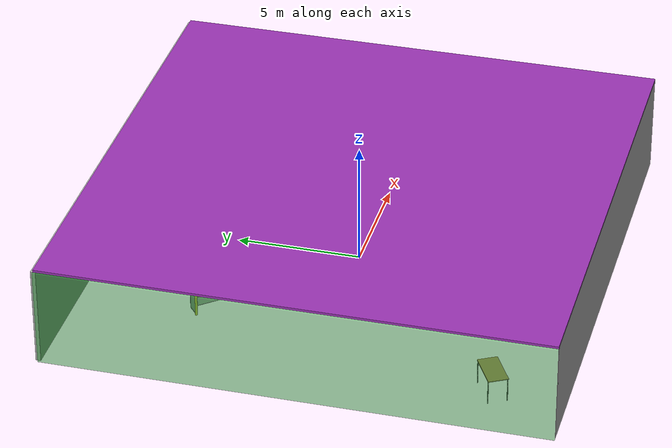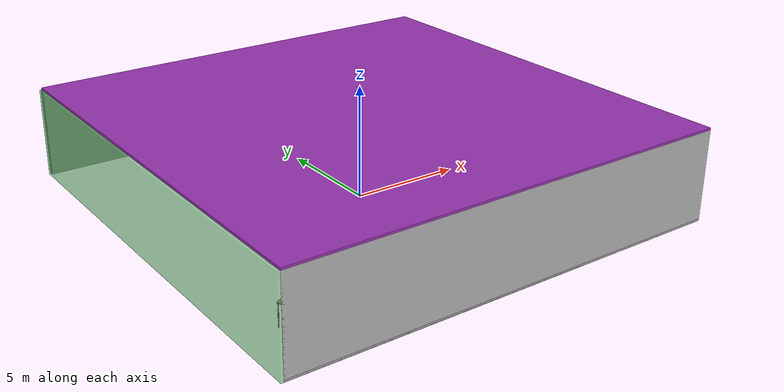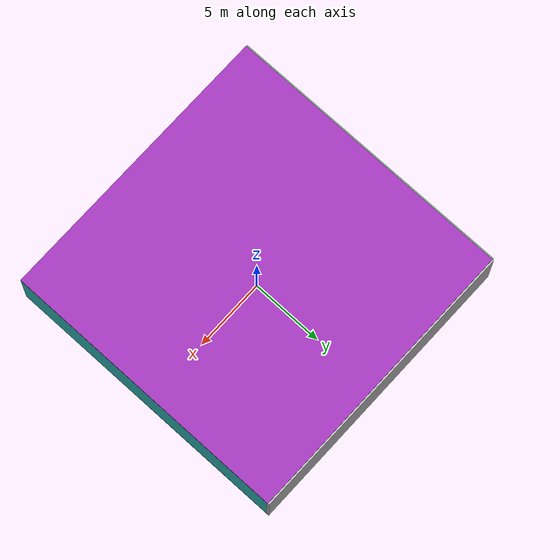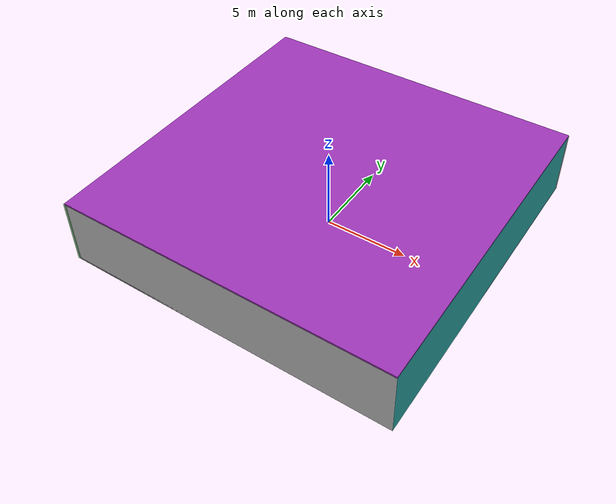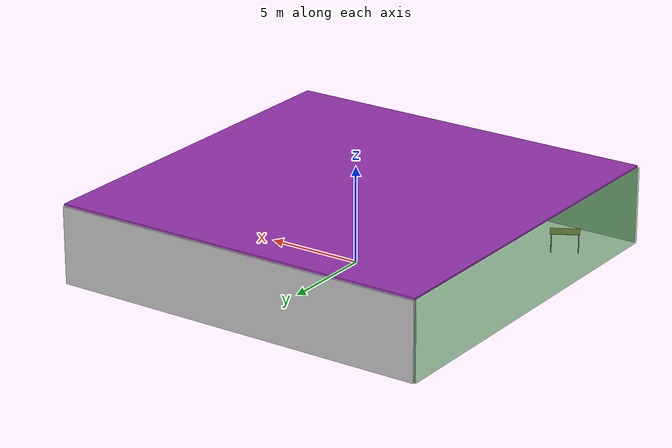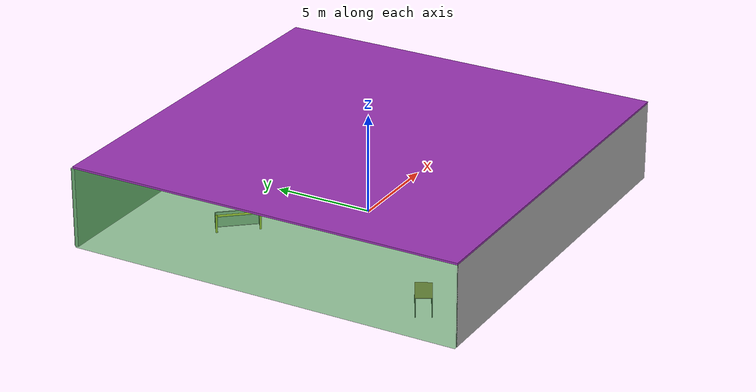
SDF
<sdf version="1.4">
 <world name="default">
  <physics type="ode">
   <max_step_size>0.001</max_step_size>
   <real_time_factor>1</real_time_factor>
   <real_time_update_rate>1000</real_time_update_rate>
   <gravity>0 0 -9.8</gravity>
  </physics>
  <scene><ambient>0.4 0.4 0.4 1</ambient><background>0.7 0.7 0.7 1</background><shadows>1</shadows></scene>
  <model name="Surrounding">
   <static>1</static>
   <link name="Ceiling">
    <collision name="Ceiling_Collision"><geometry><box><size>20 20 0.1</size></box></geometry></collision>
    <visual name="Ceiling_Visual">
     <geometry><box><size>20 20 0.1</size></box></geometry>
     <material>
      <script><uri>file://media/materials/scripts/gazebo.material</uri><name>Gazebo/PurpleGlow</name></script>
     </material>
    </visual>
    <pose>0 0 4.05 0 0 0</pose>
   </link>
   <link name="Wall_South">
    <collision name="Wall_South_Collision">
     <geometry><box><size>20 0 4</size></box></geometry>
     <pose>0 0 2 0 -0 0</pose>
    </collision>
    <visual name="Wall_South_Visual">
     <pose>0 0 2 0 -0 0</pose>
     <geometry><box><size>20 0 4</size></box></geometry>
     <material>
      <script><uri>file://media/materials/scripts/gazebo.material</uri><name>Gazebo/CloudySky</name></script>
     </material>
    </visual>
    <velocity_decay><linear>0</linear><angular>0</angular></velocity_decay>
    <pose>0 -10 0 0 -0 0</pose>
   </link>
   <link name="Wall_East">
    <collision name="Wall_21_Collision">
     <geometry><box><size>20 0 4</size></box></geometry>
     <pose>0 0 2 0 -0 0</pose>
    </collision>
    <visual name="Wall_21_Visual">
     <pose>0 0 2 0 -0 0</pose>
     <geometry><box><size>20 0 4</size></box></geometry>
     <material>
      <script><uri>file://media/materials/scripts/gazebo.material</uri><name>Gazebo/TurquoiseGlow</name></script>
     </material>
    </visual>
    <velocity_decay><linear>0</linear><angular>0</angular></velocity_decay>
    <pose>10 0 0 0 -0 1.5708</pose>
   </link>
   <link name="Wall_North">
    <collision name="Wall_22_Collision">
     <geometry><box><size>20 0.2 4</size></box></geometry>
     <pose>0 0 2 0 -0 0</pose>
    </collision>
    <visual name="Wall_22_Visual">
     <pose>0 0 2 0 -0 0</pose>
     <geometry><box><size>20 0.2 4</size></box></geometry>
     <material>
      <script><uri>file://media/materials/scripts/gazebo.material</uri><name>Gazebo/Pioneer2Body</name></script>
     </material>
    </visual>
    <velocity_decay><linear>0</linear><angular>0</angular></velocity_decay>
    <pose>0 10 0 0 -0 0</pose>
   </link>
   <link name="Wall_West">
    <collision name="Wall_23_Collision">
     <geometry><box><size>20 0.2 4</size></box></geometry>
     <pose>0 0 2 0 -0 0</pose>
    </collision>
    <visual name="Wall_23_Visual">
     <pose>0 0 2 0 -0 0</pose>
     <geometry><box><size>20 0.2 4</size></box></geometry>
     <material>
      <script><uri>file://media/materials/scripts/gazebo.material</uri><name>Gazebo/GreenTransparent</name></script>
     </material>
    </visual>
    <velocity_decay><linear>0</linear><angular>0</angular></velocity_decay>
    <pose>-10 0 0 0 0 -1.5708</pose>
   </link>
   <link name="Ground_link">
    <collision name="collision">
     <pose>0 0 .05 0 -0 0</pose>
     <geometry><box><size>20 20 0.1</size></box></geometry>
    </collision>
    <visual name="visual">
     <pose>0 0 .05 0 -0 0</pose>
     <geometry><box><size>20 20 0.1</size></box></geometry>
     <material>
      <script><uri>file://media/materials/scripts/gazebo.material</uri><name>Gazebo/GreyTransparent</name></script>
     </material>
    </visual>
   </link>
   <static>1</static>
  </model>
  <spherical_coordinates>
   <surface_model>EARTH_WGS84</surface_model>
   <latitude_deg>0</latitude_deg>
   <longitude_deg>0</longitude_deg>
   <elevation>0</elevation>
   <heading_deg>0</heading_deg>
  </spherical_coordinates>
  <light name="lightball_0" type="diffuse">
   <diffuse>0.8 0.8 0.8 1</diffuse>
   <specular>0.2 0.2 0.2 1</specular>
   <attenuation>
    <range>100</range>
    <constant>0.7</constant>
    <linear>0.01</linear>
    <quadratic>0.001</quadratic>
   </attenuation>
   <direction>-0.5 0.1 -0.9</direction>
   <pose>-6.66076087675 -8.86905489442 0.616549228542 0 0 0</pose>
  </light>
  <light name="lightball_1" type="diffuse">
   <diffuse>0.8 0.8 0.8 1</diffuse>
   <specular>0.2 0.2 0.2 1</specular>
   <attenuation>
    <range>100</range>
    <constant>0.7</constant>
    <linear>0.01</linear>
    <quadratic>0.001</quadratic>
   </attenuation>
   <direction>-0.5 0.1 -0.9</direction>
   <pose>-3.42555996052 7.89546374979 3.4510342797 0 0 0</pose>
  </light>
  <light name="lightball_2" type="diffuse">
   <diffuse>0.8 0.8 0.8 1</diffuse>
   <specular>0.2 0.2 0.2 1</specular>
   <attenuation>
    <range>100</range>
    <constant>0.7</constant>
    <linear>0.01</linear>
    <quadratic>0.001</quadratic>
   </attenuation>
   <direction>-0.5 0.1 -0.9</direction>
   <pose>-5.11173451693 -4.37078978247 0.86212155509 0 0 0</pose>
  </light>
  <light name="lightball_3" type="diffuse">
   <diffuse>0.8 0.8 0.8 1</diffuse>
   <specular>0.2 0.2 0.2 1</specular>
   <attenuation>
    <range>100</range>
    <constant>0.7</constant>
    <linear>0.01</linear>
    <quadratic>0.001</quadratic>
   </attenuation>
   <direction>-0.5 0.1 -0.9</direction>
   <pose>1.79777886157 -9.20431877225 1.29832225341 0 0 0</pose>
  </light>
  <light name="lightball_4" type="diffuse">
   <diffuse>0.8 0.8 0.8 1</diffuse>
   <specular>0.2 0.2 0.2 1</specular>
   <attenuation>
    <range>100</range>
    <constant>0.7</constant>
    <linear>0.01</linear>
    <quadratic>0.001</quadratic>
   </attenuation>
   <direction>-0.5 0.1 -0.9</direction>
   <pose>-0.106928747571 -8.84680727219 1.55918797073 0 0 0</pose>
  </light>
  <light name="lightball_5" type="diffuse">
   <diffuse>0.8 0.8 0.8 1</diffuse>
   <specular>0.2 0.2 0.2 1</specular>
   <attenuation>
    <range>100</range>
    <constant>0.7</constant>
    <linear>0.01</linear>
    <quadratic>0.001</quadratic>
   </attenuation>
   <direction>-0.5 0.1 -0.9</direction>
   <pose>-8.48329451215 -1.57364804832 0.791577329703 0 0 0</pose>
  </light>
  <light name="lightball_6" type="diffuse">
   <diffuse>0.8 0.8 0.8 1</diffuse>
   <specular>0.2 0.2 0.2 1</specular>
   <attenuation>
    <range>100</range>
    <constant>0.7</constant>
    <linear>0.01</linear>
    <quadratic>0.001</quadratic>
   </attenuation>
   <direction>-0.5 0.1 -0.9</direction>
   <pose>-1.13583512287 7.48903624147 1.09925842699 0 0 0</pose>
  </light>
  <light name="lightball_7" type="diffuse">
   <diffuse>0.8 0.8 0.8 1</diffuse>
   <specular>0.2 0.2 0.2 1</specular>
   <attenuation>
    <range>100</range>
    <constant>0.7</constant>
    <linear>0.01</linear>
    <quadratic>0.001</quadratic>
   </attenuation>
   <direction>-0.5 0.1 -0.9</direction>
   <pose>7.69901422191 -4.11651018683 1.05613661898 0 0 0</pose>
  </light>
  <light name="lightball_8" type="diffuse">
   <diffuse>0.8 0.8 0.8 1</diffuse>
   <specular>0.2 0.2 0.2 1</specular>
   <attenuation>
    <range>100</range>
    <constant>0.7</constant>
    <linear>0.01</linear>
    <quadratic>0.001</quadratic>
   </attenuation>
   <direction>-0.5 0.1 -0.9</direction>
   <pose>0.00237561986323 3.44368566887 2.4440626444 0 0 0</pose>
  </light>
  <light name="lightball_9" type="diffuse">
   <diffuse>0.8 0.8 0.8 1</diffuse>
   <specular>0.2 0.2 0.2 1</specular>
   <attenuation>
    <range>100</range>
    <constant>0.7</constant>
    <linear>0.01</linear>
    <quadratic>0.001</quadratic>
   </attenuation>
   <direction>-0.5 0.1 -0.9</direction>
   <pose>-8.16858829211 -0.659552033481 3.17727003224 0 0 0</pose>
  </light>
  <light name="lightball_10" type="diffuse">
   <diffuse>0.8 0.8 0.8 1</diffuse>
   <specular>0.2 0.2 0.2 1</specular>
   <attenuation>
    <range>100</range>
    <constant>0.7</constant>
    <linear>0.01</linear>
    <quadratic>0.001</quadratic>
   </attenuation>
   <direction>-0.5 0.1 -0.9</direction>
   <pose>4.96998390596 6.86276889729 2.80396367324 0 0 0</pose>
  </light>
  <light name="lightball_11" type="diffuse">
   <diffuse>0.8 0.8 0.8 1</diffuse>
   <specular>0.2 0.2 0.2 1</specular>
   <attenuation>
    <range>100</range>
    <constant>0.7</constant>
    <linear>0.01</linear>
    <quadratic>0.001</quadratic>
   </attenuation>
   <direction>-0.5 0.1 -0.9</direction>
   <pose>-2.99200523527 -2.22905852473 3.09425818945 0 0 0</pose>
  </light>
  <light name="lightball_12" type="diffuse">
   <diffuse>0.8 0.8 0.8 1</diffuse>
   <specular>0.2 0.2 0.2 1</specular>
   <attenuation>
    <range>100</range>
    <constant>0.7</constant>
    <linear>0.01</linear>
    <quadratic>0.001</quadratic>
   </attenuation>
   <direction>-0.5 0.1 -0.9</direction>
   <pose>-6.781520641 4.45626208701 1.50638331 0 0 0</pose>
  </light>
  <light name="lightball_13" type="diffuse">
   <diffuse>0.8 0.8 0.8 1</diffuse>
   <specular>0.2 0.2 0.2 1</specular>
   <attenuation>
    <range>100</range>
    <constant>0.7</constant>
    <linear>0.01</linear>
    <quadratic>0.001</quadratic>
   </attenuation>
   <direction>-0.5 0.1 -0.9</direction>
   <pose>4.15641115752 -2.28486193035 3.19941368429 0 0 0</pose>
  </light>
  <include><uri>model://table</uri><pose>-7.64574474308 -7.12446663506 0 0 0 0.503091339653</pose></include>
  <include>
   <uri>model://robocup_3Dsim_goal</uri>
   <pose>-4.85493095331 4.29266691378 0 0 0 0.703667120669</pose>
  </include>
  <include>
   <uri>model://textured_shapes</uri>
   <pose>3.92713014535 -1.5744002388 0 0 0 2.68078373888</pose>
  </include>
  <include>
   <uri>model://robocup_3Dsim_goal</uri>
   <pose>3.86952552819 0.876309867241 0 0 0 2.03182865139</pose>
  </include>
  <include><uri>model://table</uri><pose>7.17223073394 7.4498556383 0 0 0 2.79298434638</pose></include>
 </world>
</sdf>

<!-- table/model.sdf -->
<sdf version="1.5">
  <model name="table">
    <static>true</static>
    <link name="link">
      <collision name="surface">
        <pose>0 0 1.0 0 0 0</pose>
        <geometry>
          <box>
            <size>1.5 0.8 0.03</size>
          </box>
        </geometry>
        <surface>
          <friction>
            <ode>
              <mu>0.6</mu>
              <mu2>0.6</mu2>
            </ode>
          </friction>
        </surface>
      </collision>
      <visual name="visual1">
        <pose>0 0 1.0 0 0 0</pose>
        <geometry>
          <box>
            <size>1.5 0.8 0.03</size>
          </box>
        </geometry>
        <material>
          <script>
            <uri>model://media/materials/scripts/gazebo.material</uri>
            <name>Gazebo/Wood</name>
          </script>
        </material>
      </visual>
      <collision name="front_left_leg">
        <pose>0.68 0.38 0.5 0 0 0</pose>
        <geometry>
          <cylinder>
            <radius>0.02</radius>
            <length>1.0</length>
          </cylinder>
        </geometry>
      </collision>
      <visual name="front_left_leg">
        <pose>0.68 0.38 0.5 0 0 0</pose>
        <geometry>
          <cylinder>
            <radius>0.02</radius>
            <length>1.0</length>
          </cylinder>
        </geometry>
        <material>
          <script>
            <uri>model://media/materials/scripts/gazebo.material</uri>
            <name>Gazebo/Grey</name>
          </script>
        </material>
      </visual>
      <collision name="front_right_leg">
        <pose>0.68 -0.38 0.5 0 0 0</pose>
        <geometry>
          <cylinder>
            <radius>0.02</radius>
            <length>1.0</length>
          </cylinder>
        </geometry>
      </collision>
      <visual name="front_right_leg">
        <pose>0.68 -0.38 0.5 0 0 0</pose>
        <geometry>
          <cylinder>
            <radius>0.02</radius>
            <length>1.0</length>
          </cylinder>
        </geometry>
        <material>
          <script>
            <uri>model://media/materials/scripts/gazebo.material</uri>
            <name>Gazebo/Grey</name>
          </script>
        </material>
      </visual>
      <collision name="back_right_leg">
        <pose>-0.68 -0.38 0.5 0 0 0</pose>
        <geometry>
          <cylinder>
            <radius>0.02</radius>
            <length>1.0</length>
          </cylinder>
        </geometry>
      </collision>
      <visual name="back_right_leg">
        <pose>-0.68 -0.38 0.5 0 0 0</pose>
        <geometry>
          <cylinder>
            <radius>0.02</radius>
            <length>1.0</length>
          </cylinder>
        </geometry>
        <material>
          <script>
            <uri>model://media/materials/scripts/gazebo.material</uri>
            <name>Gazebo/Grey</name>
          </script>
        </material>
      </visual>
      <collision name="back_left_leg">
        <pose>-0.68 0.38 0.5 0 0 0</pose>
        <geometry>
          <cylinder>
            <radius>0.02</radius>
            <length>1.0</length>
          </cylinder>
        </geometry>
      </collision>
      <visual name="back_left_leg">
        <pose>-0.68 0.38 0.5 0 0 0</pose>
        <geometry>
          <cylinder>
            <radius>0.02</radius>
            <length>1.0</length>
          </cylinder>
        </geometry>
        <material>
          <script>
            <uri>model://media/materials/scripts/gazebo.material</uri>
            <name>Gazebo/Grey</name>
          </script>
        </material>
      </visual>
    </link>
  </model>
</sdf>

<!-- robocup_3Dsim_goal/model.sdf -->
<sdf version="1.5">
  <model name="robocup_3d_goal">
    <static>true</static>
    <link name="left_post">
      <pose>0 1.05 0.45 0 0 0</pose>
      <collision name="collision">
        <geometry>
          <cylinder>
            <radius>0.05</radius>
            <length>0.9</length>
          </cylinder>
        </geometry>
      </collision>
      <visual name="visual">
        <geometry>
          <cylinder>
            <radius>0.05</radius>
            <length>0.9</length>
          </cylinder>
        </geometry>
        <material>
          <script>
            <uri>file://media/materials/scripts/gazebo.material</uri>
            <name>Gazebo/ZincYellow</name>
          </script>
        </material>
      </visual>
    </link>
    <link name="left_support_horiz_lower">
      <pose>0.30 1.05 0.01 0 0 0</pose>
      <collision name="collision">
        <geometry>
          <box>
            <size>0.50 0.02 0.02</size>
          </box>
        </geometry>
      </collision>
      <visual name="visual">
        <geometry>
          <box>
            <size>0.50 0.02 0.02</size>
          </box>
        </geometry>
        <material>
          <script>
            <uri>file://media/materials/scripts/gazebo.material</uri>
            <name>Gazebo/White</name>
          </script>
        </material>
      </visual>
    </link>
    <link name="left_support_horiz_upper">
      <pose>0.30 1.05 0.79 0 0 0</pose>
      <collision name="collision">
        <geometry>
          <box>
            <size>0.50 0.02 0.02</size>
          </box>
        </geometry>
      </collision>
      <visual name="visual">
        <geometry>
          <box>
            <size>0.50 0.02 0.02</size>
          </box>
        </geometry>
        <material>
          <script>
            <uri>file://media/materials/scripts/gazebo.material</uri>
            <name>Gazebo/White</name>
          </script>
        </material>
      </visual>
    </link>
    <link name="left_support_vertical">
      <pose>0.56 1.05 0.4 0 1.5708 0</pose>
      <collision name="collision">
        <geometry>
          <box>
            <size>0.80 0.02 0.02</size>
          </box>
        </geometry>
      </collision>
      <visual name="visual">
        <geometry>
          <box>
            <size>0.80 0.02 0.02</size>
          </box>
        </geometry>
        <material>
          <script>
            <uri>file://media/materials/scripts/gazebo.material</uri>
            <name>Gazebo/White</name>
          </script>
        </material>
      </visual>
    </link>
    <link name="right_support_horiz_lower">
      <pose>0.30 -1.05 0.01 0 0 0</pose>
      <collision name="collision">
        <geometry>
          <box>
            <size>0.50 0.02 0.02</size>
          </box>
        </geometry>
      </collision>
      <visual name="visual">
        <geometry>
          <box>
            <size>0.50 0.02 0.02</size>
          </box>
        </geometry>
        <material>
          <script>
            <uri>file://media/materials/scripts/gazebo.material</uri>
            <name>Gazebo/White</name>
          </script>
        </material>
      </visual>
    </link>
    <link name="right_support_horiz_upper">
      <pose>0.30 -1.05 0.79 0 0 0</pose>
      <collision name="collision">
        <geometry>
          <box>
            <size>0.50 0.02 0.02</size>
          </box>
        </geometry>
      </collision>
      <visual name="visual">
        <geometry>
          <box>
            <size>0.50 0.02 0.02</size>
          </box>
        </geometry>
        <material>
          <script>
            <uri>file://media/materials/scripts/gazebo.material</uri>
            <name>Gazebo/White</name>
          </script>
        </material>
      </visual>
    </link>
    <link name="right_support_vertical">
      <pose>0.56 -1.05 0.4 0 1.5708 0</pose>
      <collision name="collision">
        <geometry>
          <box>
            <size>0.80 0.02 0.02</size>
          </box>
        </geometry>
      </collision>
      <visual name="visual">
        <geometry>
          <box>
            <size>0.80 0.02 0.02</size>
          </box>
        </geometry>
        <material>
          <script>
            <uri>file://media/materials/scripts/gazebo.material</uri>
            <name>Gazebo/White</name>
          </script>
        </material>
      </visual>
    </link>
    <link name="center_support_horiz_lower">
      <pose>0.56 0 0.01 0 1.5708 0</pose>
      <collision name="collision">
        <geometry>
          <box>
            <size>0.02 2.08 0.02</size>
          </box>
        </geometry>
      </collision>
      <visual name="visual">
        <geometry>
          <box>
            <size>0.02 2.08 0.02</size>
          </box>
        </geometry>
        <material>
          <script>
            <uri>file://media/materials/scripts/gazebo.material</uri>
            <name>Gazebo/White</name>
          </script>
        </material>
      </visual>
    </link>
    <link name="center_support_horiz_upper">
      <pose>0.56 0 0.79 0 1.5708 0</pose>
      <collision name="collision">
        <geometry>
          <box>
            <size>0.02 2.08 0.02</size>
          </box>
        </geometry>
      </collision>
      <visual name="visual">
        <geometry>
          <box>
            <size>0.02 2.08 0.02</size>
          </box>
        </geometry>
        <material>
          <script>
            <uri>file://media/materials/scripts/gazebo.material</uri>
            <name>Gazebo/White</name>
          </script>
        </material>
      </visual>
    </link>
    <link name="right_post">
      <pose>0 -1.05 0.45 0 0 0</pose>
      <collision name="collision">
        <geometry>
          <cylinder>
            <radius>0.05</radius>
            <length>0.9</length>
          </cylinder>
        </geometry>
      </collision>
      <visual name="visual">
        <geometry>
          <cylinder>
            <radius>0.05</radius>
            <length>0.9</length>
          </cylinder>
        </geometry>
        <material>
          <script>
            <uri>file://media/materials/scripts/gazebo.material</uri>
            <name>Gazebo/ZincYellow</name>
          </script>
        </material>
      </visual>
    </link>
    <link name="crossbar">
      <pose>0 0 0.85 1.57 1.57 0</pose>
      <collision name="collision">
        <geometry>
          <cylinder>
            <radius>0.05</radius>
            <length>2.0</length>
          </cylinder>
        </geometry>
      </collision>
      <visual name="visual">
        <geometry>
          <cylinder>
            <radius>0.05</radius>
            <length>2.0</length>
          </cylinder>
        </geometry>
        <material>
          <script>
            <uri>file://media/materials/scripts/gazebo.material</uri>
            <name>Gazebo/ZincYellow</name>
          </script>
        </material>
      </visual>
    </link>
    <link name="center_net">
      <pose>0.56 0 0.40 0 0 0</pose>
      <collision name="collision">
        <geometry>
          <box>
            <size>0.01 2.1 0.80</size>
          </box>
        </geometry>
      </collision>
      <visual name="visual">
        <geometry>
          <box>
            <size>0.01 2.1 0.80</size>
          </box>
        </geometry>
        <material>
          <script>
            <uri>model://../model_source/models/robocup09_spl_field/materials/scripts/</uri>
            <uri>model://../model_source/models/robocup09_spl_field/materials/textures/</uri>
            <name>RoboCup/Net</name>
          </script>
        </material>
      </visual>
    </link>
    <link name="left_net">
      <pose>0.30 1.05 0.40 0 0 0</pose>
      <collision name="collision">
        <geometry>
          <box>
            <size>0.50 0.01 0.76</size>
          </box>
        </geometry>
      </collision>
      <visual name="visual">
        <geometry>
          <box>
            <size>0.50 0.01 0.76</size>
          </box>
        </geometry>
        <material>
          <script>
            <uri>model://../model_source/models/robocup09_spl_field/materials/scripts/</uri>
            <uri>model://../model_source/models/robocup09_spl_field/materials/textures/</uri>
            <name>RoboCup/Net</name>
          </script>
        </material>
      </visual>
    </link>
    <link name="right_net">
      <pose>0.30 -1.05 0.40 0 0 0</pose>
      <collision name="collision">
        <geometry>
          <box>
            <size>0.50 0.01 0.76</size>
          </box>
        </geometry>
      </collision>
      <visual name="visual">
        <geometry>
          <box>
            <size>0.50 0.01 0.76</size>
          </box>
        </geometry>
        <material>
          <script>
            <uri>model://../model_source/models/robocup09_spl_field/materials/scripts/</uri>
            <uri>model://../model_source/models/robocup09_spl_field/materials/textures/</uri>
            <name>RoboCup/Net</name>
          </script>
        </material>
      </visual>
    </link>
  </model>
</sdf>

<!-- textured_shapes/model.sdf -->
<sdf version="1.6">
  <model name="textured_shapes">
    <pose>0 0 0.5 0 0 0</pose>
    <link name="box">
      <pose>0 -1.5 0 0 0 0</pose>
      <collision name="collision">
        <geometry>
          <box>
            <size>1 1 1</size>
          </box>
        </geometry>
      </collision>
      <visual name="visual">
        <geometry>
          <box>
            <size>1 1 1</size>
          </box>
        </geometry>
        <material>
          <script>
            <uri>model://../model_source/models/textured_shapes/materials/scripts</uri>
            <uri>model://../model_source/models/textured_shapes/materials/textures</uri>
            <name>TexturedShape/Squares</name>
          </script>
        </material>
      </visual>
    </link>
    <link name="sphere">
      <collision name="collision">
        <geometry>
          <sphere>
            <radius>0.5</radius>
          </sphere>
        </geometry>
      </collision>
      <visual name="visual">
        <geometry>
          <sphere>
            <radius>0.5</radius>
          </sphere>
        </geometry>
        <material>
          <script>
            <uri>model://../model_source/models/textured_shapes/materials/scripts</uri>
            <uri>model://../model_source/models/textured_shapes/materials/textures</uri>
            <name>TexturedShape/Squares</name>
          </script>
        </material>
      </visual>
    </link>
    <link name="cylinder">
      <pose>0 1.5 0 0 0 0</pose>
      <collision name="collision">
        <geometry>
          <cylinder>
            <radius>0.5</radius>
            <length>1</length>
          </cylinder>
        </geometry>
      </collision>
      <visual name="visual">
        <geometry>
          <cylinder>
            <radius>0.5</radius>
            <length>1</length>
          </cylinder>
        </geometry>
        <material>
          <script>
            <uri>model://../model_source/models/textured_shapes/materials/scripts</uri>
            <uri>model://../model_source/models/textured_shapes/materials/textures</uri>
            <name>TexturedShape/Squares</name>
          </script>
        </material>
      </visual>
    </link>
  </model>
</sdf>
